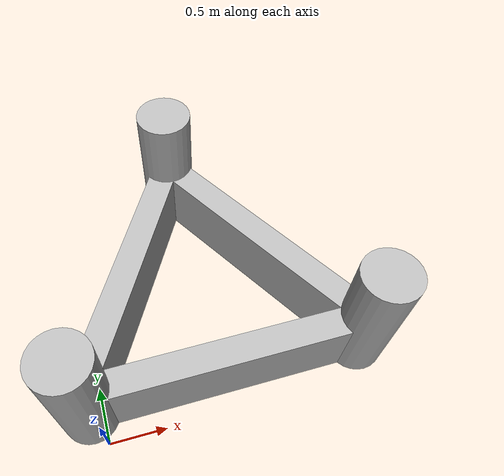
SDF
<?xml version='1.0'?>
<sdf version="1.4">
    <model name="custom_mid_obj">
        <pose>0 0 1.3 0 0 0</pose>
        <static>false</static>
        <link name="link">

            <inertial>
                <mass>1.0</mass>
                <inertia>
                    <ixx>0.083</ixx>
                    <ixy>0.0</ixy>
                    <ixz>0.0</ixz>
                    <iyy>0.083</iyy>
                    <iyz>0.0</iyz>
                    <izz>0.083</izz>
                </inertia>
            </inertial>

            <collision name="collision1_cyl">
                <geometry>
                    <cylinder>
                        <length>1.0</length>
                        <radius>0.2</radius>
                    </cylinder>
                </geometry>
            </collision>
            <visual name="visual1_cyl">
                <geometry>
                    <cylinder>
                        <length>1.0</length>
                        <radius>0.2</radius>
                    </cylinder>
                </geometry>
            </visual>

            <collision name="collision1_box">
            <pose>1 0 -0.25 0 0 0</pose>
                <geometry>
                    <box>
                        <size>2 0.2 0.5</size>
                    </box>
                </geometry>
            </collision>
            <visual name="visual1_box">
            <pose>1 0 -0.25 0 0 0</pose>
                <geometry>
                    <box>
                        <size>2 0.2 0.5</size>
                    </box>
                </geometry>
            </visual>

            <collision name="collision1_cy2">
            <pose>2 0 0 0 0 0</pose>
                <geometry>
                    <cylinder>
                        <length>1.0</length>
                        <radius>0.2</radius>
                    </cylinder>
                </geometry>
            </collision>
            <visual name="visual1_cy2">
            <pose>2 0 0 0 0 0</pose>
                <geometry>
                    <cylinder>
                        <length>1.0</length>
                        <radius>0.2</radius>
                    </cylinder>
                </geometry>
            </visual>

            <collision name="collision2_box">
            <pose>1.5 0.866 -0.25 0 0 2.0944</pose>
                <geometry>
                    <box>
                        <size>2 0.2 0.5</size>
                    </box>
                </geometry>
            </collision>
            <visual name="visual2_box">
            <pose>1.5 0.866 -0.25 0 0 2.0944</pose>
                <geometry>
                    <box>
                        <size>2 0.2 0.5</size>
                    </box>
                </geometry>
            </visual>

            <collision name="collision1_cy3">
            <pose>1 1.732 0 0 0 0</pose>
                <geometry>
                    <cylinder>
                        <length>1.0</length>
                        <radius>0.2</radius>
                    </cylinder>
                </geometry>
            </collision>
            <visual name="visual1_cy3">
            <pose>1 1.732 0 0 0 0</pose>
                <geometry>
                    <cylinder>
                        <length>1.0</length>
                        <radius>0.2</radius>
                    </cylinder>
                </geometry>
            </visual>

            <collision name="collision3_box">
            <pose>0.5 0.866 -0.25 0 0 1.0472</pose>
                <geometry>
                    <box>
                        <size>2 0.2 0.5</size>
                    </box>
                </geometry>
            </collision>
            <visual name="visual3_box">
            <pose>0.5 0.866 -0.25 0 0 1.0472</pose>
                <geometry>
                    <box>
                        <size>2 0.2 0.5</size>
                    </box>
                </geometry>
            </visual>

        </link>
    </model>
</sdf>
